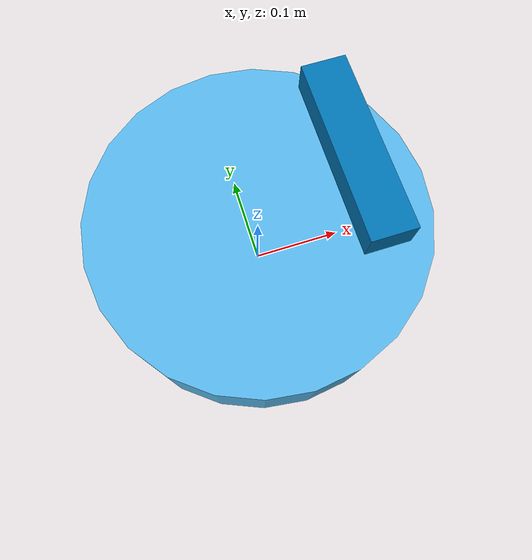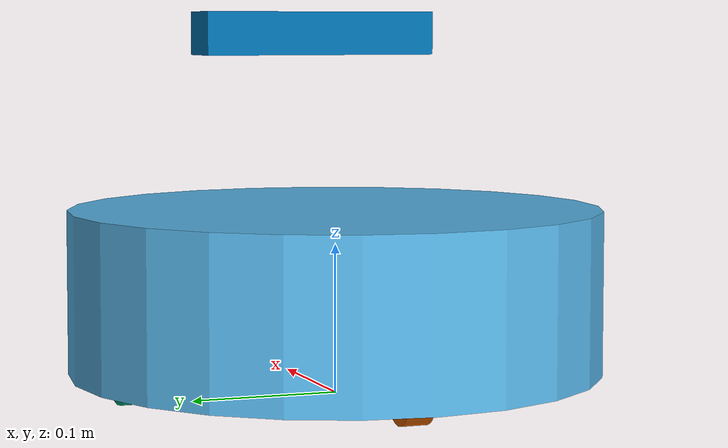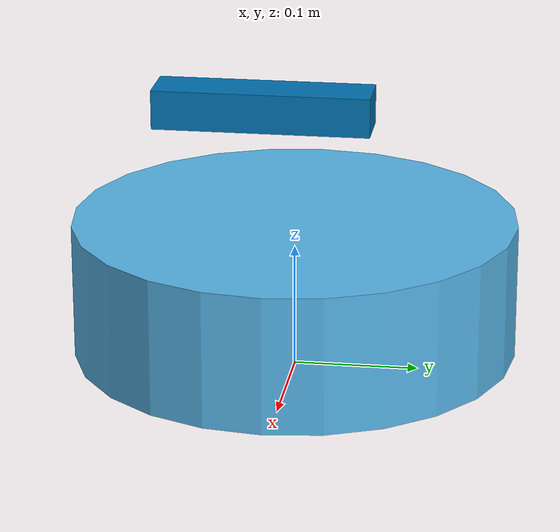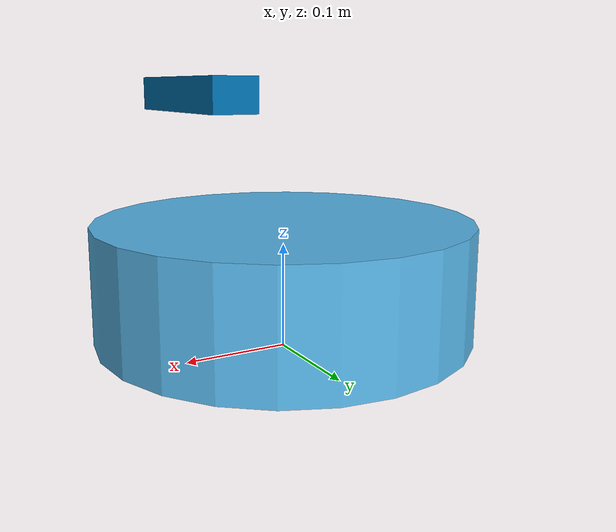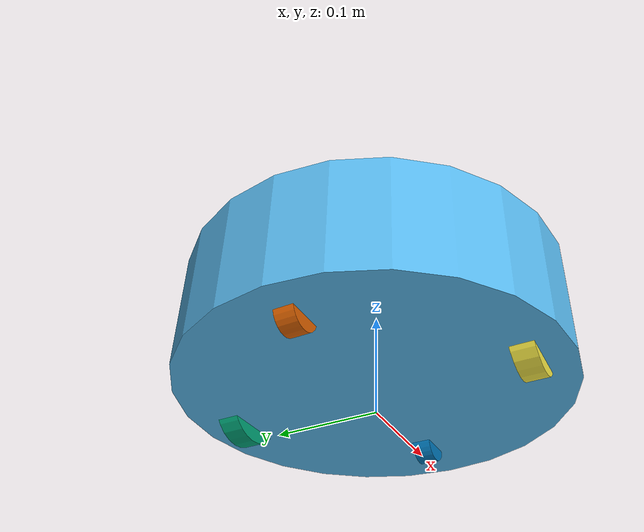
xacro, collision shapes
<?xml version="1.0"?>

<robot name="chefbot" xmlns:xacro="http://ros.org/wiki/xacro">

  <xacro:include filename="$(find chefbot_description)/urdf/common_properties.xacro" />
  <xacro:include filename="$(find chefbot_description)/gazebo/chefbot.gazebo.xacro" />

  <xacro:property name="astra_cam_py" value="-0.0125"/>
  <xacro:property name="astra_depth_rel_rgb_py" value="0.0250" />
  <xacro:property name="astra_cam_rel_rgb_py"   value="-0.0125" />
  <xacro:property name="astra_dae_display_scale"   value="0.8" />

<!-- Defining the fixed base link of the robot -->

<link name="base_footprint"/>

    <joint name="base_joint" type="fixed">
      <origin xyz="0 0 0.0102" rpy="0 0 0" />
      <parent link="base_footprint"/>
      <child link="base_link" />
    </joint>
    <link name="base_link">
      <visual>
        <geometry>
          <!-- new mesh -->
          <mesh filename="package://chefbot_description/meshes/base_plate.dae" />
       <material name="white"/>
        </geometry>

	 <origin xyz="0.001 0 -0.034" rpy="0 0 ${M_PI/2}"/>
      </visual>
      <collision>
        <geometry>
          <cylinder length="0.10938" radius="0.178"/>
        </geometry>
        <origin xyz="0.0 0 0.05949" rpy="0 0 0"/>
      </collision>
      <inertial>
        <!-- COM experimentally determined -->
        <origin xyz="0.01 0 0"/>
        <mass value="2.4"/> <!-- 2.4/2.6 kg for small/big battery pack -->

        <inertia ixx="0.019995" ixy="0.0" ixz="0.0"
                 iyy="0.019995" iyz="0.0"
                 izz="0.03675" />
      </inertial>
    </link>

    <joint name="wheel_left_joint" type="continuous">
      <parent link="base_link"/>
      <child link="wheel_left_link"/>
      <origin xyz="0 ${0.28/2} 0.026" rpy="${-M_PI/2} 0 0"/>
      <axis xyz="0 0 1"/>
    </joint>
    <link name="wheel_left_link">
      <visual>
        <geometry>
          <mesh filename="package://chefbot_description/meshes/wheel.dae"/>
       <material name="black"/>
        </geometry>
        <origin xyz="0 0 0" rpy="0 0 0"/>
      </visual>
      <collision>
        <geometry>
          <cylinder length="0.0206" radius="0.0352"/>
        </geometry>
        <origin rpy="0 0 0" xyz="0 0 0"/>
      </collision>
      <inertial>
        <mass value="0.01" />
        <origin xyz="0 0 0" />
        <inertia ixx="0.001" ixy="0.0" ixz="0.0"
                 iyy="0.001" iyz="0.0"
                 izz="0.001" />
      </inertial>
    </link>

    <joint name="wheel_right_joint" type="continuous">
      <parent link="base_link"/>
      <child link="wheel_right_link"/>
      <origin xyz="0.00 -${0.28/2} 0.026" rpy="${-M_PI/2} 0 0"/>
      <axis xyz="0 0 1"/>
    </joint>
    <link name="wheel_right_link">
      <visual>
        <geometry>
          <mesh filename="package://chefbot_description/meshes/wheel.dae"/>
       	<material name="white"/>
        </geometry>
        <origin xyz="0 0 0" rpy="0 0 0"/>
      </visual>
      <collision>
        <geometry>
          <cylinder length="0.0206" radius="0.0350"/>
        </geometry>
        <origin rpy="0 0 0" xyz="0 0 0"/>
      </collision>
      <inertial>
        <mass value="0.01" />
        <origin xyz="0 0 0" />
        <inertia ixx="0.001" ixy="0.0" ixz="0.0"
                 iyy="0.001" iyz="0.0"
                 izz="0.001" />
      </inertial>
    </link>

    <joint name="caster_front_joint" type="fixed">
      <parent link="base_link"/>
      <child link="chefbot_caster_front_link"/>
      <origin xyz="0.115 0.0 0.007" rpy="${-M_PI/2} 0 0"/>
    </joint>
    <link name="chefbot_caster_front_link">
      <collision>
        <geometry>
          <cylinder length="0.0176" radius="0.017"/>
        </geometry>
        <origin rpy="0 0 0" xyz="0 0 0"/>
      </collision>
      <inertial>
        <mass value="0.01" />
        <origin xyz="0 0 0" />
        <inertia ixx="0.001" ixy="0.0" ixz="0.0"
                 iyy="0.001" iyz="0.0"
                 izz="0.001" />
      </inertial>
    </link>

    <joint name="chefbot_caster_back_joint" type="fixed">
      <parent link="base_link"/>
      <child link="chefbot_caster_back_link"/>
      <origin xyz="-0.135 0.0 0.009" rpy="${-M_PI/2} 0 0"/>
    </joint>
    <link name="chefbot_caster_back_link">
      <collision>
        <geometry>
          <cylinder length="0.0176" radius="0.017"/>
        </geometry>
        <origin rpy="0 0 0" xyz="0 0 0"/>
      </collision>
      <inertial>
        <mass value="0.01" />
        <origin xyz="0 0 0" />
        <inertia ixx="0.001" ixy="0.0" ixz="0.0"
                 iyy="0.001" iyz="0.0"
                 izz="0.001" />
      </inertial>
    </link>

    <!-- chefbot's sensors -->

    <joint name="gyro_joint" type="fixed">
      <axis xyz="0 1 0"/>
      <origin xyz="0.056 0.062 0.0202" rpy="0 0 0"/>
      <parent link="base_link"/>
      <child link="gyro_link"/>
    </joint>
    <link name="gyro_link">
      <inertial>
        <mass value="0.001"/>
        <origin xyz="0 0 0" rpy="0 0 0"/>
        <inertia ixx="0.0001" ixy="0" ixz="0"
                 iyy="0.000001" iyz="0"
                 izz="0.0001"/>
      </inertial>
    </link>

    <joint name="cliff_sensor_left_joint" type="fixed">
      <origin xyz="0.08734 0.13601 0.0214" rpy="0 ${M_PI/2} 0" />
      <parent link="base_link"/>
      <child link="cliff_sensor_left_link" />
    </joint>
    <link name="cliff_sensor_left_link">
      <inertial>
        <mass value="0.0001" />
        <origin xyz="0 0 0" />
        <inertia ixx="0.0001" ixy="0.0" ixz="0.0"
                 iyy="0.0001" iyz="0.0"
                 izz="0.0001" />
      </inertial>
    </link>

    <joint name="cliff_sensor_right_joint" type="fixed">
      <origin xyz="0.085 -0.13601 0.0214" rpy="0 ${M_PI/2} 0" />
      <parent link="base_link"/>
      <child link="cliff_sensor_right_link" />
    </joint>
    <link name="cliff_sensor_right_link">
      <inertial>
        <mass value="0.0001" />
        <origin xyz="0 0 0" />
        <inertia ixx="0.0001" ixy="0.0" ixz="0.0"
                 iyy="0.0001" iyz="0.0"
                 izz="0.0001" />
      </inertial>
    </link>

    <joint name="cliff_sensor_front_joint" type="fixed">
      <origin xyz="0.156 0.00 0.0214" rpy="0 ${M_PI/2} 0" />
      <parent link="base_link"/>
      <child link="cliff_sensor_front_link" />
    </joint>
    <link name="cliff_sensor_front_link">
      <inertial>
        <mass value="0.0001" />
        <origin xyz="0 0 0" />
        <inertia ixx="0.0001" ixy="0.0" ixz="0.0"
                 iyy="0.0001" iyz="0.0"
                 izz="0.0001" />
      </inertial>
    </link>

<!-- Adding Astra -->

    <joint name="camera_rgb_joint" type="fixed">
      <origin xyz="0.08 0 0.23"
              rpy="0 0 0"/>
      <parent link="base_link"/>
      <child link="camera_rgb_frame" />
    </joint>
    <link name="camera_rgb_frame"/>

    <joint name="camera_rgb_optical_joint" type="fixed">
      <origin xyz="0 0 0" rpy="${-M_PI/2} 0 ${-M_PI/2}" />
      <parent link="camera_rgb_frame" />
      <child link="camera_rgb_optical_frame" />
    </joint>
    <link name="camera_rgb_optical_frame"/>

    <joint name="camera_joint" type="fixed">
      <origin xyz="0 ${astra_cam_rel_rgb_py} 0"
              rpy="0 0 0"/>
      <parent link="camera_rgb_frame"/>
      <child link="camera_link"/>
    </joint>
    <link name="camera_link">
      <visual>
        <origin xyz="-0.04 0.02 -0.01" rpy="${M_PI/2} 0 ${M_PI/2}"/>
        <geometry>
          <mesh filename="package://chefbot_description/meshes/astra.dae" scale="${astra_dae_display_scale} ${astra_dae_display_scale} ${astra_dae_display_scale}"/>
        </geometry>
      </visual>
      <collision>
        <origin xyz="0.0 0.0 0.0" rpy="0 0 0" />
        <geometry>
        <box size="0.0400 0.1650 0.0300"/>
      </geometry>
      </collision>
      <inertial>
        <mass value="0.564" />
        <origin xyz="0 0 0" />
        <inertia ixx="0.003881243" ixy="0.0" ixz="0.0"
                 iyy="0.000498940" iyz="0.0"
                 izz="0.003879257" />
      </inertial>
    </link>

    <joint name="camera_depth_joint" type="fixed">
      <origin xyz="0 ${astra_depth_rel_rgb_py} 0" rpy="0 0 0" />
      <parent link="camera_rgb_frame" />
      <child link="camera_depth_frame" />
    </joint>
    <link name="camera_depth_frame"/>

    <joint name="camera_depth_optical_joint" type="fixed">
      <origin xyz="0 0 0" rpy="${-M_PI/2} 0 ${-M_PI/2}" />
      <parent link="camera_depth_frame" />
      <child link="camera_depth_optical_frame" />
    </joint>
    <link name="camera_depth_optical_frame"/>

</robot>
